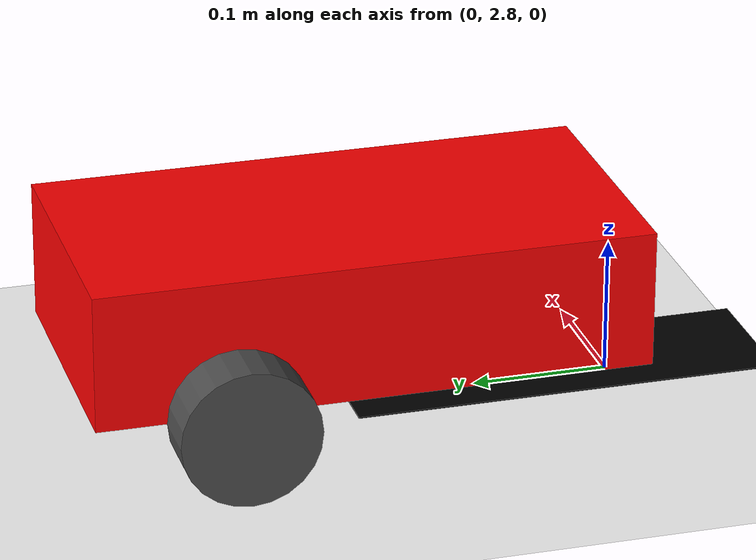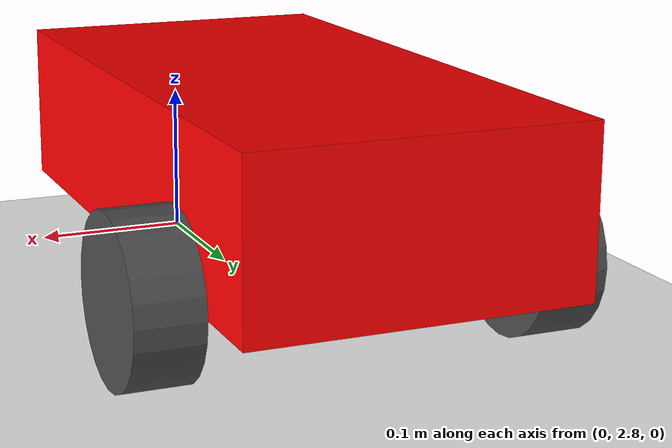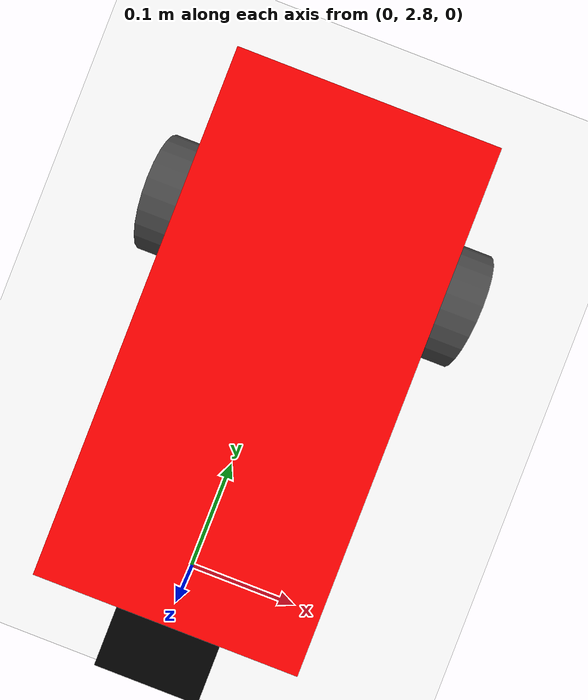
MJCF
<?xml version="1.0"?>
<mujoco>

  <option timestep="0.01" gravity="0 0 -9.81"/>

  <worldbody>

    <geom name="floor" type="plane" size="5 5 0.1" rgba="1 1 1 1"/>

    <geom name="line" type="box" size="0.05 3 0.0005" pos="0 0 0.01" rgba="0 0 0 1"/>

    <body name="robot" pos="0 3 0.1">
      <freejoint/>

      <geom type="box" size="0.1 0.2 0.05" rgba="1 0 0 1" mass="10"/>

      <geom name="front wheel" pos="0 -0.15 -0.07" type="sphere" size=".02" condim="1" priority="1"/>

      <camera name="camera_down"
        mode="fixed"
        pos="0 -0.2 -0.05"
        euler="90 180 0"
        fovy="50">
      </camera>

      <body name="left_wheel" pos="-0.12 0.1 -0.05">
        <joint name="left_wheel_joint" type="hinge" axis="1 0 0"/>
        <geom type="cylinder" size="0.05 0.02" rgba="0.3 0.3 0.3 1" mass="0.1" euler="0 90 0"/>
      </body>

      <body name="right_wheel" pos="0.12 0.1 -0.05">
        <joint name="right_wheel_joint" type="hinge" axis="1 0 0"/>
        <geom type="cylinder" size="0.05 0.02" rgba="0.3 0.3 0.3 1" mass="0.1" euler="0 90 0"/>
      </body>
    </body>
  </worldbody>

  <tendon>
    <fixed name="forward">
      <joint joint="left_wheel_joint" coef=".5"/>
      <joint joint="right_wheel_joint" coef=".5"/>
    </fixed>
    <fixed name="turn">
      <joint joint="left_wheel_joint" coef="-.5"/>
      <joint joint="right_wheel_joint" coef=".5"/>
    </fixed>
  </tendon>

  <actuator>
    <motor name="forward" tendon="forward" ctrlrange="-1 1"/>
    <motor name="turn" tendon="turn" ctrlrange="-1 1"/>
  </actuator>
</mujoco>
